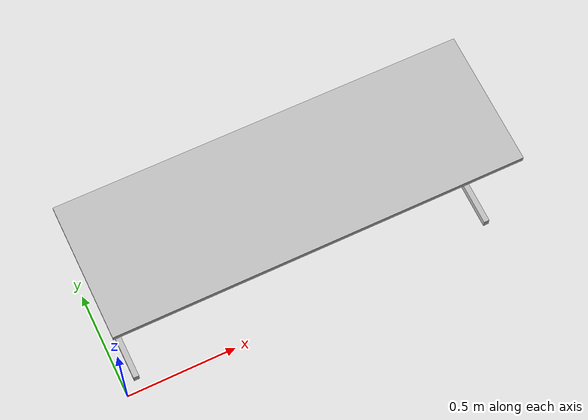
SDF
<?xml version="1.0"?>
<sdf version="1.3">
  <model name="HKU Table">
    <static>true</static>
    <link name="link">
      <collision name="collision">
        <geometry>
          <mesh>
           <uri>model://hkutable/meshes/table.dae</uri>
          </mesh>
        </geometry>
      </collision>
      <visual name="visual">
        <geometry>
          <mesh>
           <uri>model://hkutable/meshes/table.dae</uri>
          </mesh>
        </geometry>
      </visual>
    </link>
  </model>
</sdf>
